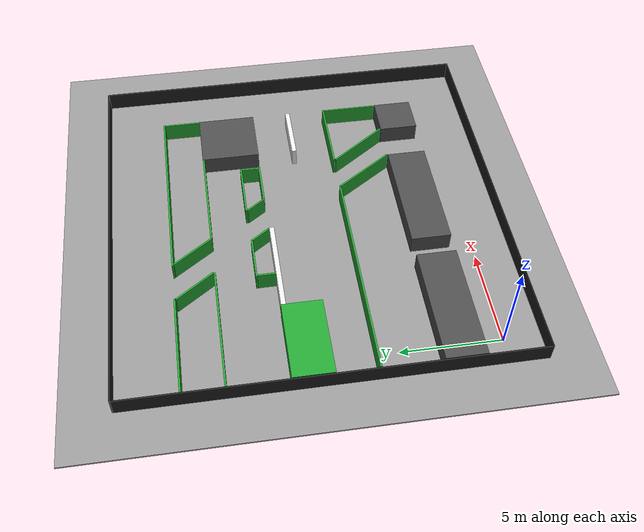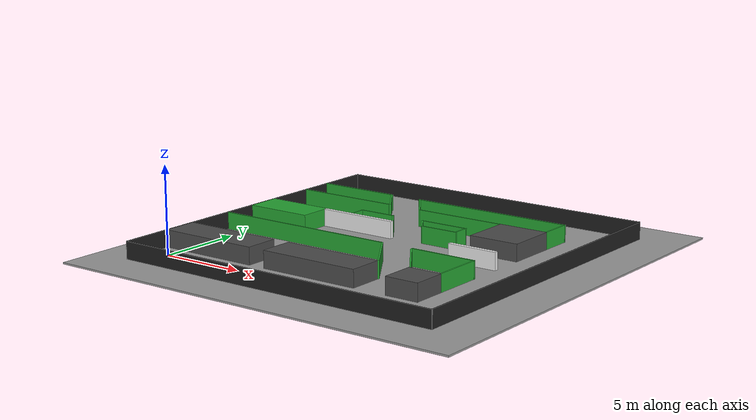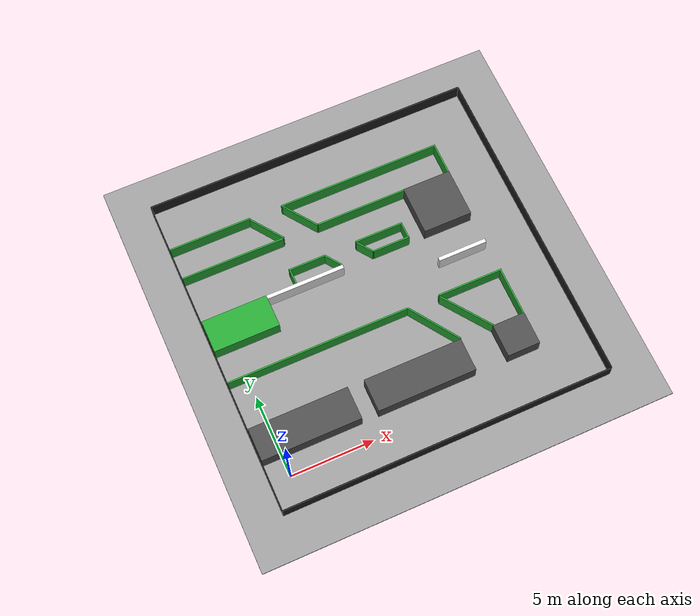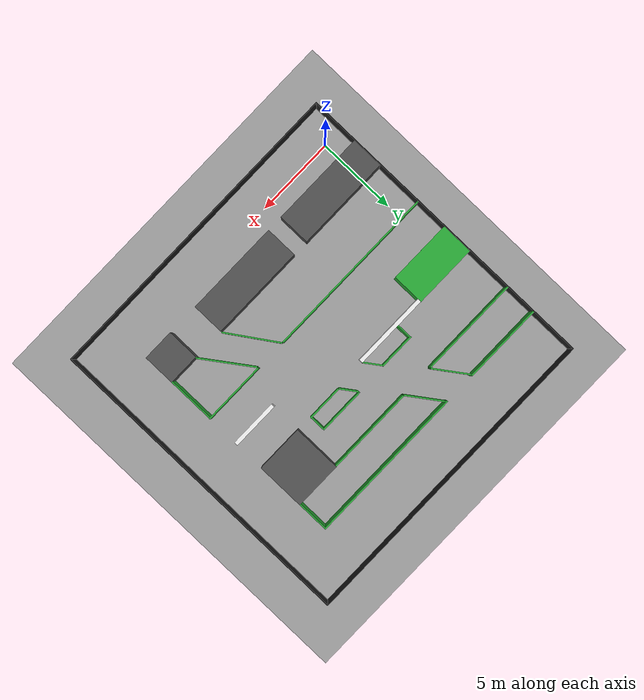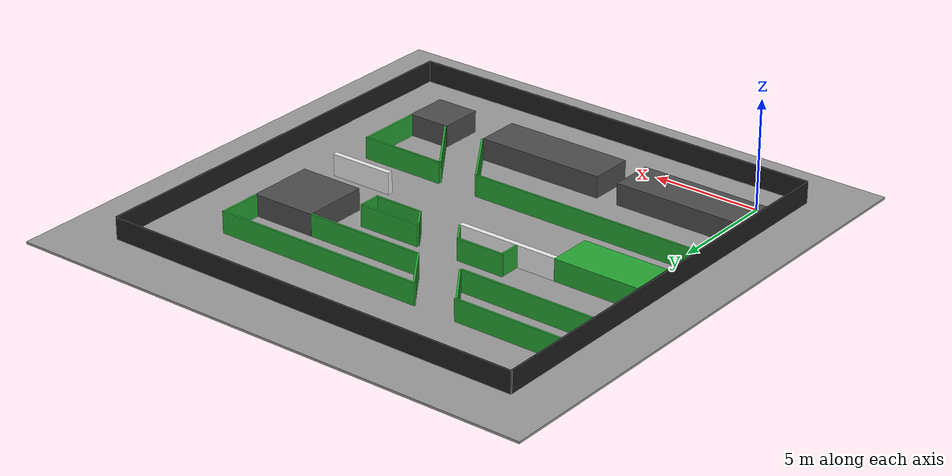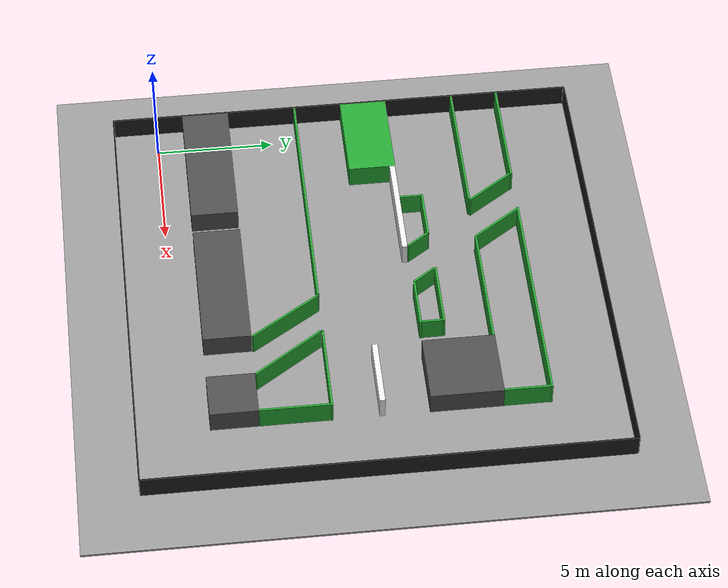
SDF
<?xml version="1.0"?>
<sdf version="1.6">
  <world name="default">
    <include>
      <uri>model://sun</uri>
    </include>
    <scene>
      <grid>false</grid>
      <shadows>false</shadows>
    </scene>

    <!-- orange_world model -->
    <include>
      <pose>9.0 9.0 0 0 0 3.142</pose>
      <uri>model://orange_hosei</uri>
      <name>orange_hosei</name>
    </include>
  </world>
</sdf>

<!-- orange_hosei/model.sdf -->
<sdf version="1.6">
  <model name="orange_hosei">
    <static>true</static>

    <!--first floor-->
    <link name="first_floor_ground">
      <pose>0 0.86 -0.05 0 0 0</pose>
      <visual name="visual">
        <geometry>
          <box>
            <size>25 25 0.1</size>
          </box>
        </geometry>
        <material>
          <script>
            <uri>file://media/materials/scripts/gazebo.material</uri>
            <name>Gazebo/Grey</name>
          </script>
        </material>
      </visual>
      <collision name="collision">
        <geometry>
          <box>
            <size>25 25 0.1</size>
          </box>
        </geometry>
        <surface>
          <friction>
            <ode>
              <mu>100</mu>
              <mu2>50</mu2>
            </ode>
          </friction>
          <bounce />
          <contact>
            <ode />
          </contact>
        </surface>
      </collision>
    </link>

    <link name="first_floor_wall1">
      <pose>7.1833 6.83868 0.5 0 0 0</pose>
      <visual name="visual">
        <geometry>
          <box>
            <size>5.99691 2.01004 1</size>
          </box>
        </geometry>
        <material>
          <script>
            <uri>file://media/materials/scripts/gazebo.material</uri>
            <name>Gazebo/DarkGrey</name>
          </script>
        </material>
      </visual>
      <collision name="collision">
        <geometry>
          <box>
            <size>5.99691 2.01004 1</size>
          </box>
        </geometry>
      </collision>
    </link>

    <link name="first_floor_wall2">
      <pose>0.188308 6.83744 0.5 0 0 0</pose>
      <visual name="visual">
        <geometry>
          <box>
            <size>5.99691 2.01004 1</size>
          </box>
        </geometry>
        <material>
          <script>
            <uri>file://media/materials/scripts/gazebo.material</uri>
            <name>Gazebo/DarkGrey</name>
          </script>
        </material>
      </visual>
      <collision name="collision">
        <geometry>
          <box>
            <size>5.99691 2.01004 1</size>
          </box>
        </geometry>
      </collision>
    </link>

    <link name="first_floor_wall3">
      <pose>-5.80476 6.84678 0.5 0 0 0</pose>
      <visual name="visual">
        <geometry>
          <box>
            <size>1.98724 2.01004 1</size>
          </box>
        </geometry>
        <material>
          <script>
            <uri>file://media/materials/scripts/gazebo.material</uri>
            <name>Gazebo/DarkGrey</name>
          </script>
        </material>
      </visual>
      <collision name="collision">
        <geometry>
          <box>
            <size>1.98724 2.01004 1</size>
          </box>
        </geometry>
      </collision>
    </link>

    <link name="first_floor_wall4">
      <pose>8.18517 -0.162337 0.5 0 0 0</pose>
      <visual name="visual">
        <geometry>
          <box>
            <size>3.98346 2.01004 1</size>
          </box>
        </geometry>
        <material>
          <script>
            <uri>file://media/materials/scripts/gazebo.material</uri>
            <name>Gazebo/Green</name>
          </script>
        </material>
      </visual>
      <collision name="collision">
        <geometry>
          <box>
            <size>3.98346 2.01004 1</size>
          </box>
        </geometry>
      </collision>
    </link>

    <link name="first_floor_wall5">
      <pose>-5.30731 -2.64384 0.5 0 0 0</pose>
      <visual name="visual">
        <geometry>
          <box>
            <size>2.9898 3.03101 1</size>
          </box>
        </geometry>
        <material>
          <script>
            <uri>file://media/materials/scripts/gazebo.material</uri>
            <name>Gazebo/DarkGrey</name>
          </script>
        </material>
      </visual>
      <collision name="collision">
        <geometry>
          <box>
            <size>2.9898 3.03101 1</size>
          </box>
        </geometry>
      </collision>
    </link>

    <link name="first_floor_wall6">
      <pose>-5.29666 0.826818 0.5 0 0 0</pose>
      <visual name="visual">
        <geometry>
          <box>
            <size>2.99398 0.232517 1</size>
          </box>
        </geometry>
        <material>
          <script>
            <uri>file://media/materials/scripts/gazebo.material</uri>
            <name>Gazebo/White</name>
          </script>
        </material>
      </visual>
      <collision name="collision">
        <geometry>
          <box>
            <size>2.99398 0.232517 1</size>
          </box>
        </geometry>
      </collision>
    </link>

    <link name="first_floor_wall7">
      <pose>3.81811 -1.03684 0.5 0 0 0</pose>
      <visual name="visual">
        <geometry>
          <box>
            <size>4.76615 0.232517 1</size>
          </box>
        </geometry>
        <material>
          <script>
            <uri>file://media/materials/scripts/gazebo.material</uri>
            <name>Gazebo/White</name>
          </script>
        </material>
      </visual>
      <collision name="collision">
        <geometry>
          <box>
            <size>4.76615 0.232517 1</size>
          </box>
        </geometry>
      </collision>
    </link>

    <link name="first_floor_wall8">
      <pose>4.67148 2.87704 0.5 0 0 0</pose>
      <visual name="visual">
        <geometry>
          <box>
            <size>11.008 0.087484 1</size>
          </box>
        </geometry>
        <material>
          <script>
            <uri>file://media/materials/scripts/gazebo.material</uri>
            <name>Gazebo/Green</name>
          </script>
        </material>
      </visual>
      <collision name="collision">
        <geometry>
          <box>
            <size>11.008 0.087484 1</size>
          </box>
        </geometry>
      </collision>
    </link>

    <link name="first_floor_wall9">
      <pose>-1.79832 -6.1092 0.5 0 0 0</pose>
      <visual name="visual">
        <geometry>
          <box>
            <size>10.003 0.087484 1</size>
          </box>
        </geometry>
        <material>
          <script>
            <uri>file://media/materials/scripts/gazebo.material</uri>
            <name>Gazebo/Green</name>
          </script>
        </material>
      </visual>
      <collision name="collision">
        <geometry>
          <box>
            <size>10.003 0.087484 1</size>
          </box>
        </geometry>
      </collision>
    </link>

    <link name="first_floor_wall10">
      <pose>7.68827 -6.11267 0.5 0 0 0</pose>
      <visual name="visual">
        <geometry>
          <box>
            <size>5.0278 0.087484 1</size>
          </box>
        </geometry>
        <material>
          <script>
            <uri>file://media/materials/scripts/gazebo.material</uri>
            <name>Gazebo/Green</name>
          </script>
        </material>
      </visual>
      <collision name="collision">
        <geometry>
          <box>
            <size>5.0278 0.087484 1</size>
          </box>
        </geometry>
      </collision>
    </link>

    <link name="first_floor_wall11">
      <pose>-4.81822 2.87687 0.5 0 0 0</pose>
      <visual name="visual">
        <geometry>
          <box>
            <size>3.98917 0.087484 1</size>
          </box>
        </geometry>
        <material>
          <script>
            <uri>file://media/materials/scripts/gazebo.material</uri>
            <name>Gazebo/Green</name>
          </script>
        </material>
      </visual>
      <collision name="collision">
        <geometry>
          <box>
            <size>3.98917 0.087484 1</size>
          </box>
        </geometry>
      </collision>
    </link>

    <link name="first_floor_wall12">
      <pose>-6.7515 -5.11034 0.5 0 0 -1.57059</pose>
      <visual name="visual">
        <geometry>
          <box>
            <size>1.91856 0.087484 1</size>
          </box>
        </geometry>
        <material>
          <script>
            <uri>file://media/materials/scripts/gazebo.material</uri>
            <name>Gazebo/Green</name>
          </script>
        </material>
      </visual>
      <collision name="collision">
        <geometry>
          <box>
            <size>1.91856 0.087484 1</size>
          </box>
        </geometry>
      </collision>
    </link>

    <link name="first_floor_wall13">
      <pose>3.24783 -2.11041 0.5 0 0 0</pose>
      <visual name="visual">
        <geometry>
          <box>
            <size>2.27943 0.087484 1</size>
          </box>
        </geometry>
        <material>
          <script>
            <uri>file://media/materials/scripts/gazebo.material</uri>
            <name>Gazebo/Green</name>
          </script>
        </material>
      </visual>
      <collision name="collision">
        <geometry>
          <box>
            <size>2.27943 0.087484 1</size>
          </box>
        </geometry>
      </collision>
    </link>

    <link name="first_floor_wall14">
      <pose>-1.69806 -1.20496 0.5 0 0 0</pose>
      <visual name="visual">
        <geometry>
          <box>
            <size>2.27943 0.087484 1</size>
          </box>
        </geometry>
        <material>
          <script>
            <uri>file://media/materials/scripts/gazebo.material</uri>
            <name>Gazebo/Green</name>
          </script>
        </material>
      </visual>
      <collision name="collision">
        <geometry>
          <box>
            <size>2.27943 0.087484 1</size>
          </box>
        </geometry>
      </collision>
    </link>

    <link name="first_floor_wall15">
      <pose>-1.33218 -2.18828 0.5 0 0 0</pose>
      <visual name="visual">
        <geometry>
          <box>
            <size>2.95324 0.087484 1</size>
          </box>
        </geometry>
        <material>
          <script>
            <uri>file://media/materials/scripts/gazebo.material</uri>
            <name>Gazebo/Green</name>
          </script>
        </material>
      </visual>
      <collision name="collision">
        <geometry>
          <box>
            <size>2.95324 0.087484 1</size>
          </box>
        </geometry>
      </collision>
    </link>

    <link name="first_floor_wall16">
      <pose>-6.75403 4.38074 0.5 0 0 -1.57059</pose>
      <visual name="visual">
        <geometry>
          <box>
            <size>2.91475 0.087484 1</size>
          </box>
        </geometry>
        <material>
          <script>
            <uri>file://media/materials/scripts/gazebo.material</uri>
            <name>Gazebo/Green</name>
          </script>
        </material>
      </visual>
      <collision name="collision">
        <geometry>
          <box>
            <size>2.91475 0.087484 1</size>
          </box>
        </geometry>
      </collision>
    </link>

    <link name="first_floor_wall17">
      <pose>-3.85392 4.38882 0.5 0 0 -0.954791</pose>
      <visual name="visual">
        <geometry>
          <box>
            <size>3.49253 0.087484 1</size>
          </box>
        </geometry>
        <material>
          <script>
            <uri>file://media/materials/scripts/gazebo.material</uri>
            <name>Gazebo/Green</name>
          </script>
        </material>
      </visual>
      <collision name="collision">
        <geometry>
          <box>
            <size>3.49253 0.087484 1</size>
          </box>
        </geometry>
      </collision>
    </link>

    <link name="first_floor_wall18">
      <pose>-2.77675 -1.68969 0.5 0 0 -1.57059</pose>
      <visual name="visual">
        <geometry>
          <box>
            <size>0.888064 0.087484 1</size>
          </box>
        </geometry>
        <material>
          <script>
            <uri>file://media/materials/scripts/gazebo.material</uri>
            <name>Gazebo/Green</name>
          </script>
        </material>
      </visual>
      <collision name="collision">
        <geometry>
          <box>
            <size>0.888064 0.087484 1</size>
          </box>
        </geometry>
      </collision>
    </link>

    <link name="first_floor_wall19">
      <pose>4.33486 -1.60852 0.5 0 0 -1.57059</pose>
      <visual name="visual">
        <geometry>
          <box>
            <size>0.909365 0.087484 1</size>
          </box>
        </geometry>
        <material>
          <script>
            <uri>file://media/materials/scripts/gazebo.material</uri>
            <name>Gazebo/Green</name>
          </script>
        </material>
      </visual>
      <collision name="collision">
        <geometry>
          <box>
            <size>0.909365 0.087484 1</size>
          </box>
        </geometry>
      </collision>
    </link>

    <link name="first_floor_wall20">
      <pose>-1.85013 4.33135 0.5 0 0 -0.979786</pose>
      <visual name="visual">
        <geometry>
          <box>
            <size>3.49253 0.087484 1</size>
          </box>
        </geometry>
        <material>
          <script>
            <uri>file://media/materials/scripts/gazebo.material</uri>
            <name>Gazebo/Green</name>
          </script>
        </material>
      </visual>
      <collision name="collision">
        <geometry>
          <box>
            <size>3.49253 0.087484 1</size>
          </box>
        </geometry>
      </collision>
    </link>

    <link name="first_floor_wall21">
      <pose>4.53184 -5.09431 0.5 0 0 -0.954791</pose>
      <visual name="visual">
        <geometry>
          <box>
            <size>2.3271 0.087484 1</size>
          </box>
        </geometry>
        <material>
          <script>
            <uri>file://media/materials/scripts/gazebo.material</uri>
            <name>Gazebo/Green</name>
          </script>
        </material>
      </visual>
      <collision name="collision">
        <geometry>
          <box>
            <size>2.3271 0.087484 1</size>
          </box>
        </geometry>
      </collision>
    </link>

    <link name="first_floor_wall22">
      <pose>2.42071 -5.07999 0.5 0 0 -0.954791</pose>
      <visual name="visual">
        <geometry>
          <box>
            <size>2.40429 0.087484 1</size>
          </box>
        </geometry>
        <material>
          <script>
            <uri>file://media/materials/scripts/gazebo.material</uri>
            <name>Gazebo/Green</name>
          </script>
        </material>
      </visual>
      <collision name="collision">
        <geometry>
          <box>
            <size>2.40429 0.087484 1</size>
          </box>
        </geometry>
      </collision>
    </link>

    <link name="first_floor_wall23">
      <pose>1.79775 -1.6274 0.5 0 0 -0.954791</pose>
      <visual name="visual">
        <geometry>
          <box>
            <size>1.12858 0.087484 1</size>
          </box>
        </geometry>
        <material>
          <script>
            <uri>file://media/materials/scripts/gazebo.material</uri>
            <name>Gazebo/Green</name>
          </script>
        </material>
      </visual>
      <collision name="collision">
        <geometry>
          <box>
            <size>1.12858 0.087484 1</size>
          </box>
        </geometry>
      </collision>
    </link>

    <link name="first_floor_wall24">
      <pose>-0.213803 -1.65841 0.5 0 0 -0.954791</pose>
      <visual name="visual">
        <geometry>
          <box>
            <size>1.12858 0.087484 1</size>
          </box>
        </geometry>
        <material>
          <script>
            <uri>file://media/materials/scripts/gazebo.material</uri>
            <name>Gazebo/Green</name>
          </script>
        </material>
      </visual>
      <collision name="collision">
        <geometry>
          <box>
            <size>1.12858 0.087484 1</size>
          </box>
        </geometry>
      </collision>
    </link>

    <link name="first_floor_wall25">
      <pose>7.04565 -4.10442 0.5 0 0 0</pose>
      <visual name="visual">
        <geometry>
          <box>
            <size>6.27478 0.087484 1</size>
          </box>
        </geometry>
        <material>
          <script>
            <uri>file://media/materials/scripts/gazebo.material</uri>
            <name>Gazebo/Green</name>
          </script>
        </material>
      </visual>
      <collision name="collision">
        <geometry>
          <box>
            <size>6.27478 0.087484 1</size>
          </box>
        </geometry>
      </collision>
    </link>

    <link name="first_floor_wall26">
      <pose>-1.05427 -4.10983 0.5 0 0 0</pose>
      <visual name="visual">
        <geometry>
          <box>
            <size>5.52227 0.087484 1</size>
          </box>
        </geometry>
        <material>
          <script>
            <uri>file://media/materials/scripts/gazebo.material</uri>
            <name>Gazebo/Green</name>
          </script>
        </material>
      </visual>
      <collision name="collision">
        <geometry>
          <box>
            <size>5.52227 0.087484 1</size>
          </box>
        </geometry>
      </collision>
    </link>

    <link name="first_floor_wall27">
      <pose>-9.79546 0.83 0.5 0 0 0</pose>
      <visual name="visual">
        <geometry>
          <box>
            <size>0.043707 20.0311 1</size>
          </box>
        </geometry>
        <material>
          <script>
            <uri>file://media/materials/scripts/gazebo.material</uri>
            <name>Gazebo/Black</name>
          </script>
        </material>
      </visual>
      <collision name="collision">
        <geometry>
          <box>
            <size>0.043707 20.0311 1</size>
          </box>
        </geometry>
      </collision>
    </link>

    <link name="first_floor_wall28">
      <pose>10.2262 0.871969 0.5 0 0 0</pose>
      <visual name="visual">
        <geometry>
          <box>
            <size>0.043707 20.0311 1</size>
          </box>
        </geometry>
        <material>
          <script>
            <uri>file://media/materials/scripts/gazebo.material</uri>
            <name>Gazebo/Black</name>
          </script>
        </material>
      </visual>
      <collision name="collision">
        <geometry>
          <box>
            <size>0.043707 14.0311 1</size>
          </box>
        </geometry>
      </collision>
    </link>

    <link name="first_floor_wall29">
      <pose>0.222936 10.8607 0.5 0 0 -1.57002</pose>
      <visual name="visual">
        <geometry>
          <box>
            <size>0.043707 20.0311 1</size>
          </box>
        </geometry>
        <material>
          <script>
            <uri>file://media/materials/scripts/gazebo.material</uri>
            <name>Gazebo/Black</name>
          </script>
        </material>
      </visual>
      <collision name="collision">
        <geometry>
          <box>
            <size>0.043707 20.0311 1</size>
          </box>
        </geometry>
      </collision>
    </link>

    <link name="first_floor_wall30">
      <pose>0.217485 -9.19083 0.5 0 0 -1.57002</pose>
      <visual name="visual">
        <geometry>
          <box>
            <size>0.043707 20.0311 1</size>
          </box>
        </geometry>
        <material>
          <script>
            <uri>file://media/materials/scripts/gazebo.material</uri>
            <name>Gazebo/Black</name>
          </script>
        </material>
      </visual>
      <collision name="collision">
        <geometry>
          <box>
            <size>0.043707 20.0311 1</size>
          </box>
        </geometry>
      </collision>
    </link>
  </model>
</sdf>
